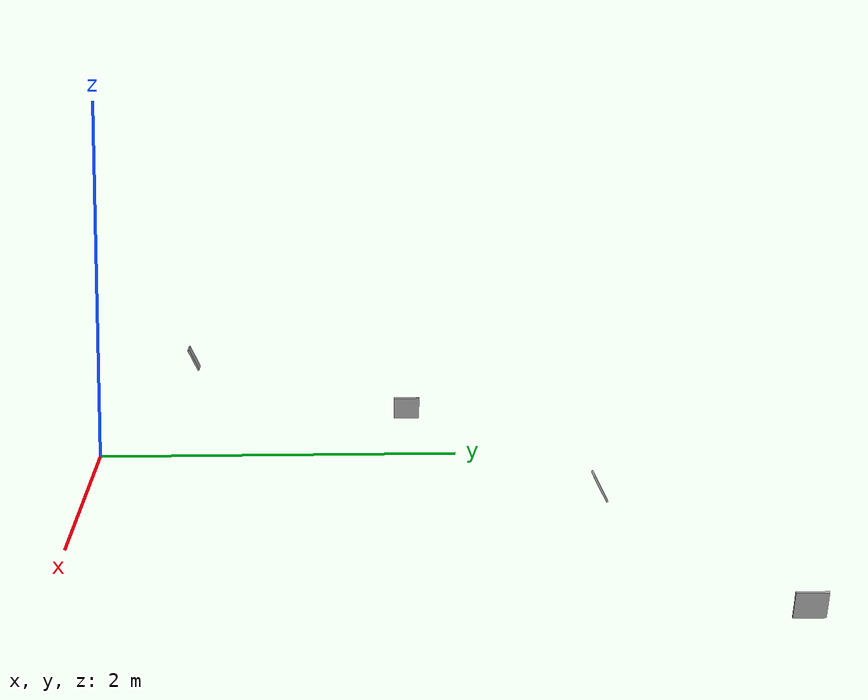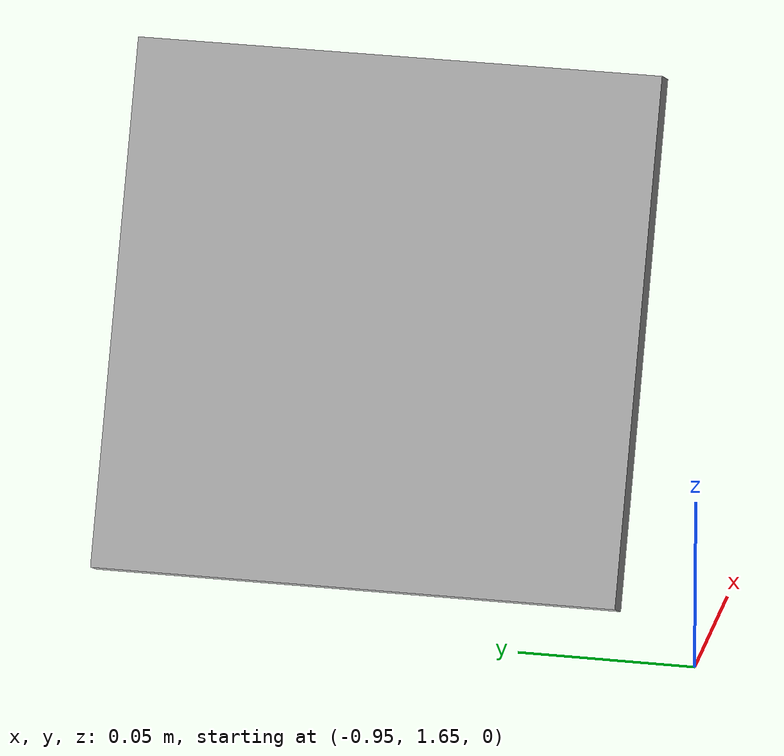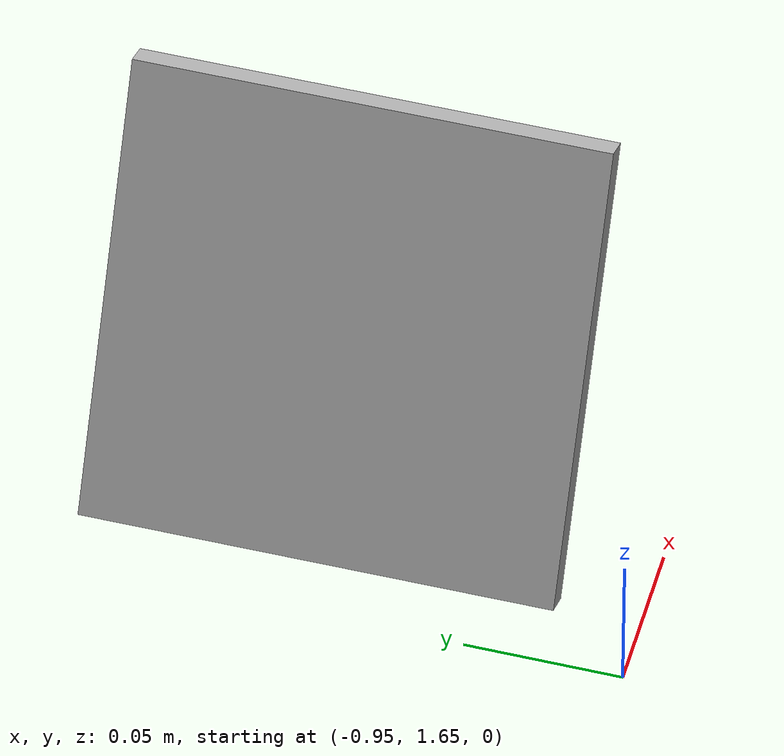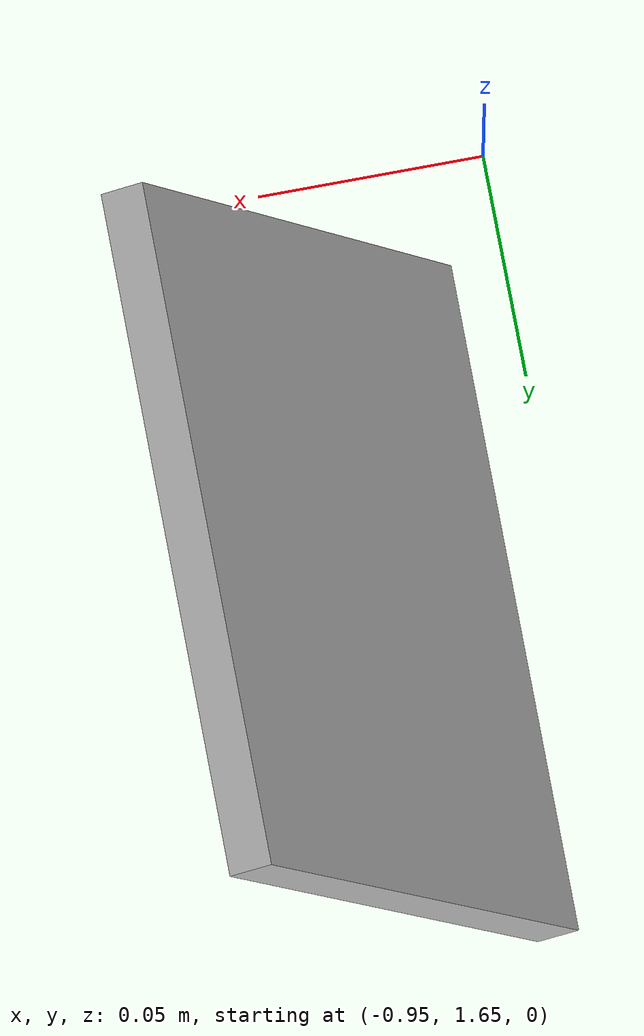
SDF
<?xml version='1.0'?>
<sdf version='1.6'>
  <model name='april_tag_sx'>
    <link name='tag1_sx'>
    <pose frame=''>-0.90 1.75 0.075 0 90 0</pose>
      <visual name='tag1_sx_Visual'>
        <geometry>
          <box>
          <size>0.15 0.15 0.01</size>
          </box>
        </geometry>
           <material>
          <script>
            <uri>model://april_tag/Apriltag36_11_00000/materials/scripts</uri>
            <uri>model://april_tag/Apriltag36_11_00000/materials/textures</uri>
            <name>Apriltag36_11_00000</name>
          </script>
        </material>
      </visual>
     </link>
     <link name='tag2_sx'>
    <pose frame=''>1.1 2.7 0.075 90 0 0</pose>
      <visual name='tag2_sx_Visual'>
        <geometry>
          <box>
          <size>0.15 0.15 0.01</size>
          </box>
        </geometry>
           <material>
          <script>
            <uri>model://april_tag/Apriltag36_11_00000/materials/scripts</uri>
            <uri>model://april_tag/Apriltag36_11_00000/materials/textures</uri>
            <name>Apriltag36_11_00000</name>
          </script>
        </material>
      </visual>
     </link>
     <link name='tag3_sx'>
    <pose frame=''>3.3 3.4 0.075 0 90 0</pose>
      <visual name='tag3_sx_Visual'>
        <geometry>
          <box>
          <size>0.15 0.15 0.01</size>
          </box>
        </geometry>
           <material>
          <script>
            <uri>model://april_tag/Apriltag36_11_00000/materials/scripts</uri>
            <uri>model://april_tag/Apriltag36_11_00000/materials/textures</uri>
            <name>Apriltag36_11_00000</name>
          </script>
        </material>
      </visual>
     </link>
     <link name='tag4_sx'>
    <pose frame=''>-2.50 0.4 0.075 90 0 0</pose>
      <visual name='tag4_sx_Visual'>
        <geometry>
          <box>
          <size>0.15 0.15 0.01</size>
          </box>
        </geometry>
           <material>
          <script>
            <uri>model://april_tag/Apriltag36_11_00000/materials/scripts</uri>
            <uri>model://april_tag/Apriltag36_11_00000/materials/textures</uri>
            <name>Apriltag36_11_00000</name>
          </script>
        </material>
      </visual>
     </link>
    <static>1</static>
  </model>
</sdf>
